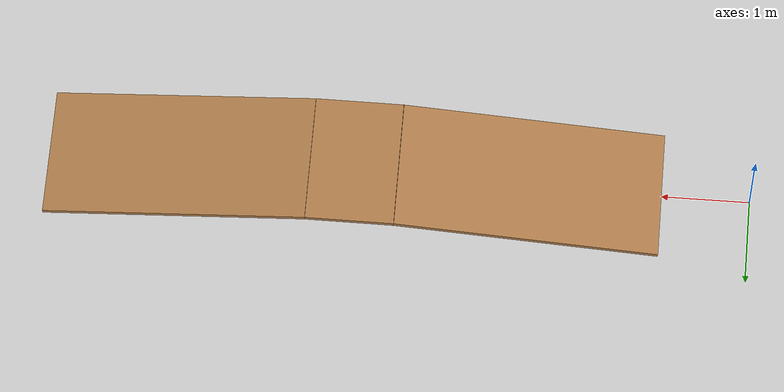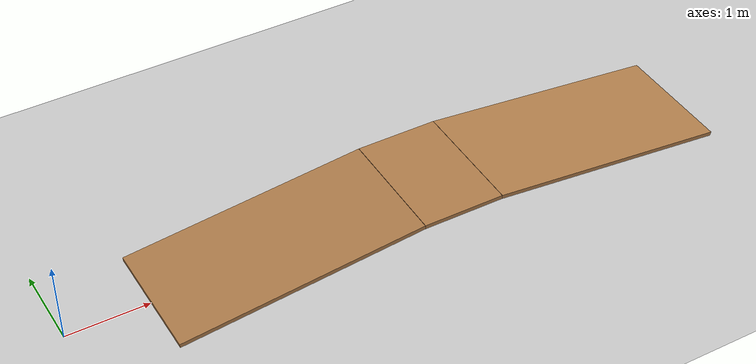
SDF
<?xml version="1.0" ?>
<!-- 由 omni_world.py 自动生成: scene=slope seed=None -->
<sdf version="1.5">
  <world name="slope">
    <physics type="ode">
      <type>world</type>
      <max_step_size>0.001</max_step_size>
      <real_time_update_rate>1000</real_time_update_rate>
      <iters>500</iters>
    </physics>
    <include><uri>model://sun</uri></include>
    <include><uri>model://ground_plane</uri></include>
    <model name="ramp_up">
      <static>true</static>
      <pose>2.492 0.000 0.182 0.0000 -0.1047 0.0000</pose>
      <link name="link">
        <collision name="collision">
          <geometry><box><size>3.000 1.500 0.050</size></box></geometry>
          <surface><friction><ode><mu>1.2</mu><mu2>1.2</mu2></ode></friction></surface>
        </collision>
        <visual name="visual">
          <geometry><box><size>3.000 1.500 0.050</size></box></geometry>
          <material><script><uri>file://media/materials/scripts/gazebo.material</uri>
            <name>Gazebo/Wood</name></script></material>
        </visual>
      </link>
    </model>
    <model name="platform">
      <static>true</static>
      <pose>4.484 0.000 0.339 0.0000 0.0000 0.0000</pose>
      <link name="link">
        <collision name="collision">
          <geometry><box><size>1.000 1.500 0.050</size></box></geometry>
          <surface><friction><ode><mu>1.2</mu><mu2>1.2</mu2></ode></friction></surface>
        </collision>
        <visual name="visual">
          <geometry><box><size>1.000 1.500 0.050</size></box></geometry>
          <material><script><uri>file://media/materials/scripts/gazebo.material</uri>
            <name>Gazebo/Wood</name></script></material>
        </visual>
      </link>
    </model>
    <model name="ramp_down">
      <static>true</static>
      <pose>6.475 0.000 0.182 0.0000 0.1047 0.0000</pose>
      <link name="link">
        <collision name="collision">
          <geometry><box><size>3.000 1.500 0.050</size></box></geometry>
          <surface><friction><ode><mu>1.2</mu><mu2>1.2</mu2></ode></friction></surface>
        </collision>
        <visual name="visual">
          <geometry><box><size>3.000 1.500 0.050</size></box></geometry>
          <material><script><uri>file://media/materials/scripts/gazebo.material</uri>
            <name>Gazebo/Wood</name></script></material>
        </visual>
      </link>
    </model>

  </world>
</sdf>
